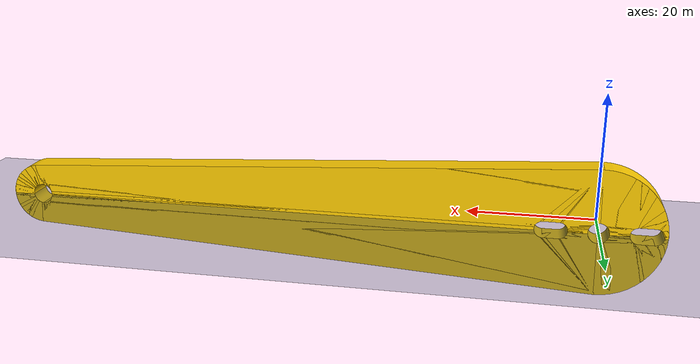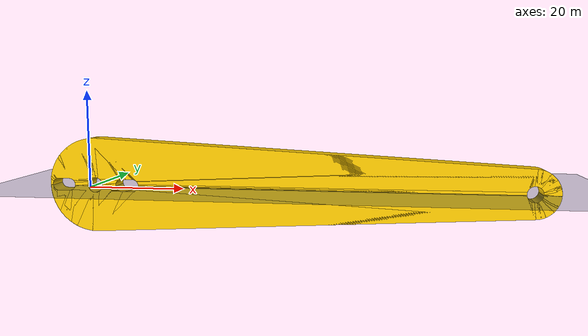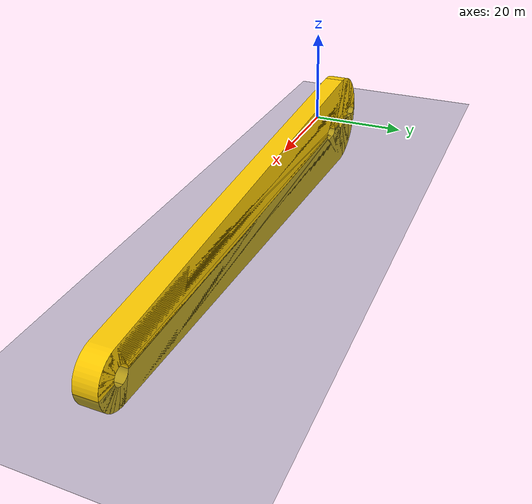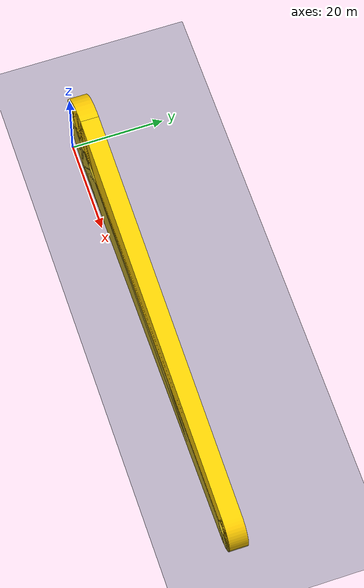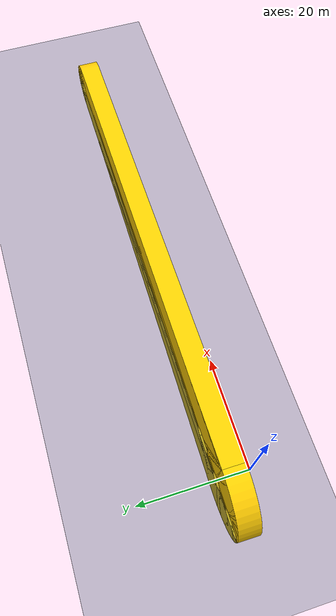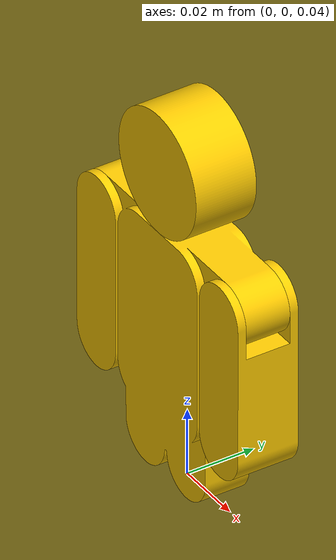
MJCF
<mujoco model="stick_figure">
        <option timestep="0.003" gravity="0 0 -9.81" integrator="RK4"/>
        <compiler angle="degree" meshdir="meshes" texturedir="textures" />

        <visual>
            <map force="0.1" zfar="30"/>
            <headlight diffuse="0.6 0.6 0.6" ambient="0.3 0.3 0.3" specular="0 0 0"/>
            <rgba haze="0.15 0.25 0.35 1"/>
            <global offwidth="2560" offheight="1440" elevation="-20" azimuth="120"/>
        </visual>

        <asset>
            <texture type="skybox" builtin="gradient" rgb1="0.3 0.5 0.7" rgb2="0 0 0" width="32" height="512"/>
            <texture type="2d" name="groundplane" builtin="checker" mark="edge" rgb1="0.2 0.3 0.4" rgb2="0.1 0.2 0.3" markrgb="0.8 0.8 0.8" width="300" height="300"/>
            <material name="groundplane" texture="groundplane" texuniform="true" texrepeat="5 5" reflectance="0.2"/>
            <material name="body" rgba="1.0 0.8 0.0 1"/>
            <mesh name="head_mesh" file="head.stl"/>
            <mesh name="torso_mesh" file="torso.stl"/>
            <mesh name="arm_mesh" file="arm.stl"/>
            <mesh name="leg_mesh" file="leg.stl"/>
        </asset>

        <worldbody>
            <light name="spotlight" mode="targetbodycom" target="torso" diffuse=".8 .8 .8" specular="0.3 0.3 0.3" pos="0 -6 4" cutoff="30"/>
            <geom name="floor" size="0 0 0.05" type="plane" material="groundplane" contype="1" conaffinity="1"/>
            <body name="torso" pos="0 0 0.08004">
                <light name="top" pos="0 0 2" mode="trackcom"/>
                <joint name="torso" type="free"/>
                <geom type="mesh" mesh="torso_mesh" material="body" contype="2" conaffinity="1"/>
                <inertial pos="0 0 0.00692" mass="0.07159599" diaginertia="0.00003631 0.00004998 0.00001708"/>
                <body name="head" pos="0 0 0.05752">
                    <geom type="mesh" mesh="head_mesh" material="body" contype="2" conaffinity="1"/>
                    <inertial pos="0 0 0" mass="0.02401526" diaginertia="0.00000268 0.00000402 0.00000268"/>
                </body>
                <body name="left_arm" pos="-0.02893 0 0.03009">
                    <joint name="left_arm" type="hinge" pos="0 0 0" axis="0 1 0" limited="true" range="0 180"/>
                    <geom type="mesh" mesh="arm_mesh" material="body" contype="2" conaffinity="1"/>
                    <inertial pos="0 0 -0.02580032" mass="0.07159599" diaginertia="0.000004 0.00000391 0.00000105"/>
                </body>
                <body name="right_arm" pos="0.02893 0 0.03009">
                    <joint name="right_arm" type="hinge" pos="0 0 0" axis="0 -1 0" limited="true" range="0 180"/>
                    <geom type="mesh" mesh="arm_mesh" material="body" contype="2" conaffinity="1"/>
                    <inertial pos="0 0 -0.02580032" mass="0.07159599" diaginertia="0.000004 0.00000391 0.00000105"/>
                </body>
                <body name="left_leg" pos="-0.00964 0 -0.03009">
                    <geom type="mesh" mesh="leg_mesh" material="body" contype="2" conaffinity="1"/>
                    <inertial pos="0 0 -0.02580032" mass="0.07159599" diaginertia="0.000004 0.00000391 0.00000105"/>
                </body>
                <body name="right_leg" pos="0.00964 0 -0.03009">
                    <geom type="mesh" mesh="leg_mesh" material="body" contype="2" conaffinity="1"/>
                    <inertial pos="0 0 -0.02580032" mass="0.07159599" diaginertia="0.000004 0.00000391 0.00000105"/>
                </body>
            </body>
        </worldbody>

        <actuator>
            <motor name="left_arm" joint="left_arm" forcelimited="false" forcerange="-0.01 0.01"/>
            <motor name="right_arm" joint="right_arm" forcelimited="false" forcerange="-0.01 0.01"/>
        </actuator>
    </mujoco>
